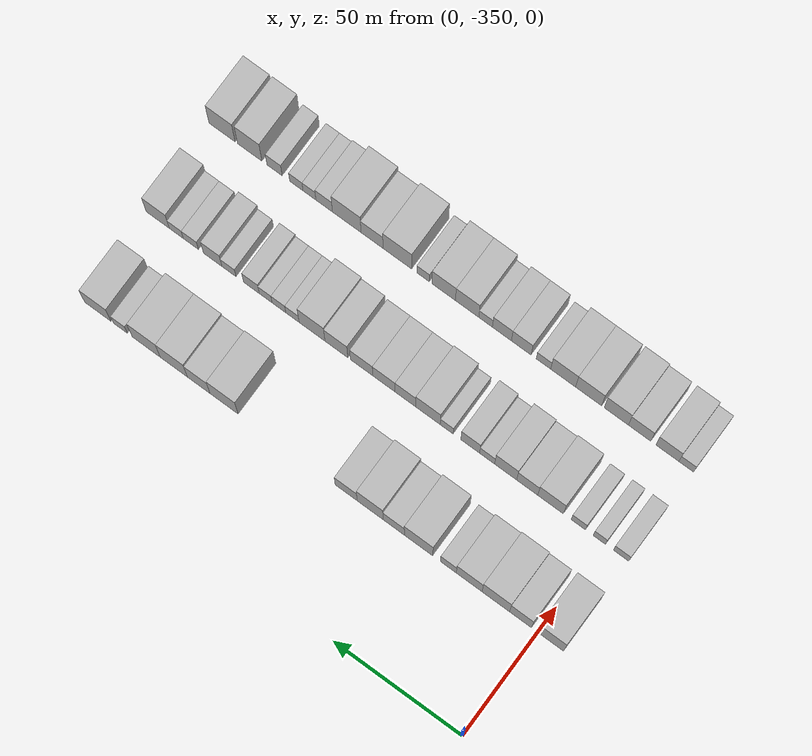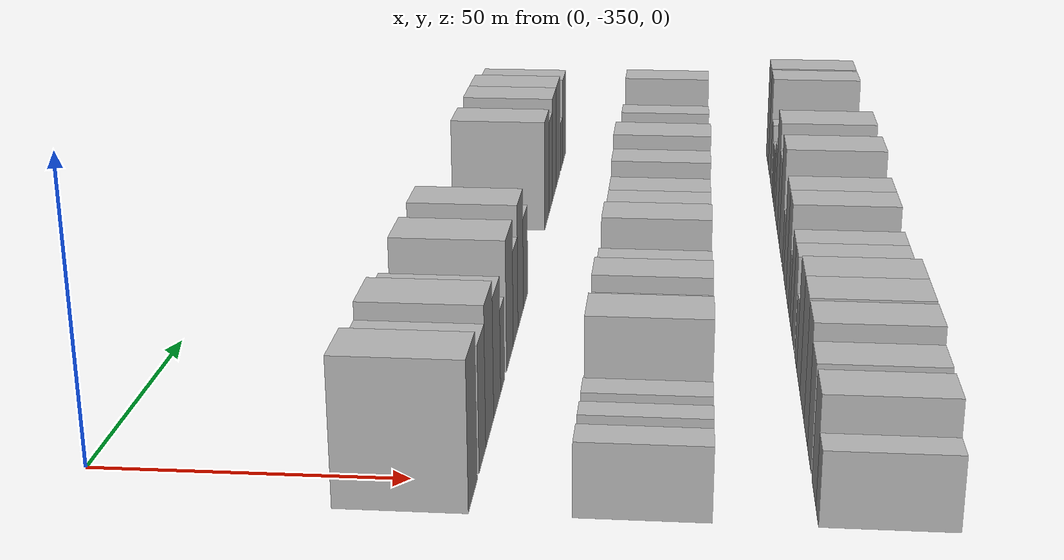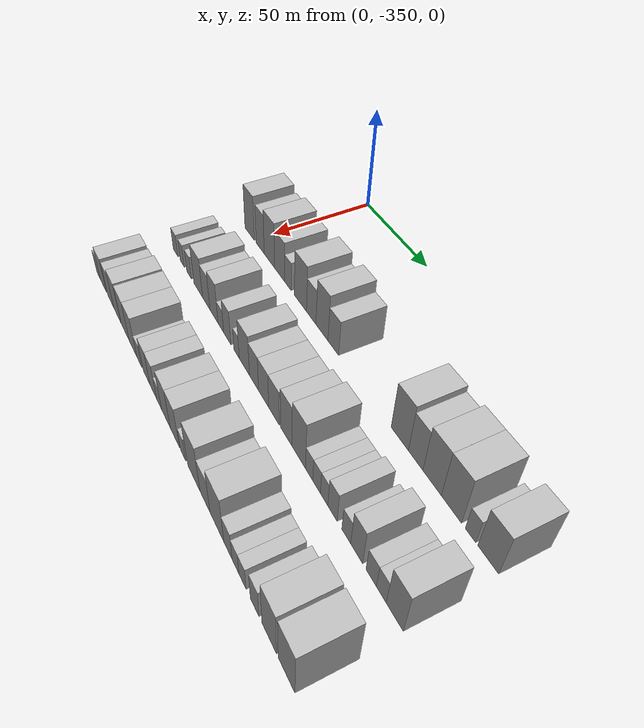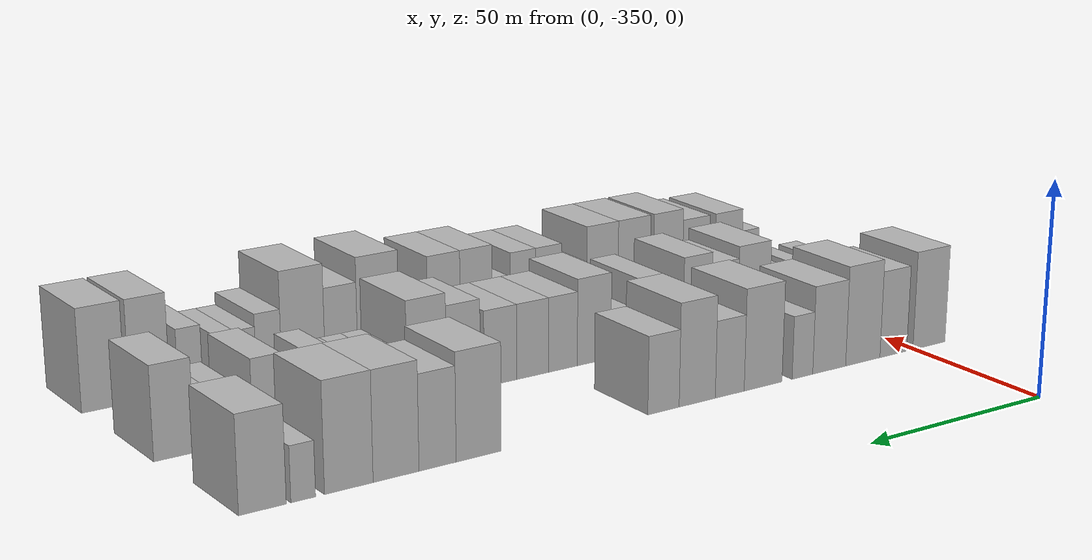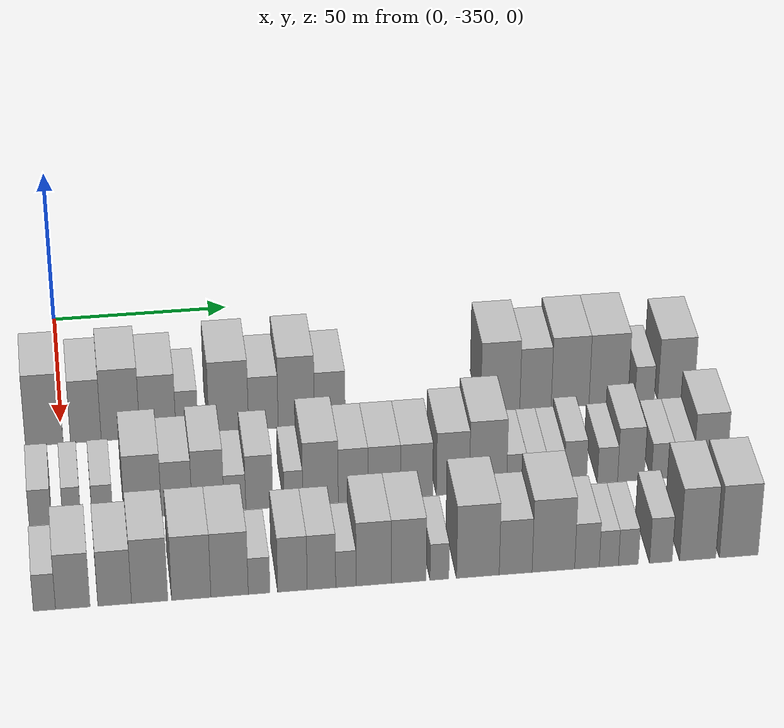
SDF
<sdf version="1.6">
 <world name="default">
  <model name="building_1">
   <static>1</static>
   <pose>50.0000 -354.8078 0 0.000000 0.000000 0.000000</pose>
   <link name="link">
    <pose>0 0 12.00 0 0 0</pose>
    <collision name="collision"><geometry><box><size>20.0000 10.3845 24.0000</size></box></geometry></collision>
    <visual name="visual">
     <cast_shadows>0</cast_shadows>
     <geometry><box><size>20.0000 10.3845 24.0000</size></box></geometry>
     <material>
      <script>
       <uri>model://HANNAS_wall/materials/scripts</uri>
       <uri>model://HANNAS_wall/materials/textures</uri>
       <name>vrc/HANNAS_wall</name>
      </script>
     </material>
    </visual>
   </link>
  </model>
  <model name="building_2">
   <static>1</static>
   <pose>50.0000 -343.3684 0 0.000000 0.000000 0.000000</pose>
   <link name="link">
    <pose>0 0 10.50 0 0 0</pose>
    <collision name="collision"><geometry><box><size>20.0000 8.4943 21.0000</size></box></geometry></collision>
    <visual name="visual">
     <cast_shadows>0</cast_shadows>
     <geometry><box><size>20.0000 8.4943 21.0000</size></box></geometry>
     <material>
      <script>
       <uri>model://HANNAS_wall/materials/scripts</uri>
       <uri>model://HANNAS_wall/materials/textures</uri>
       <name>vrc/HANNAS_wall</name>
      </script>
     </material>
    </visual>
   </link>
  </model>
  <model name="building_3">
   <static>1</static>
   <pose>50.0000 -333.7885 0 0.000000 0.000000 0.000000</pose>
   <link name="link">
    <pose>0 0 12.00 0 0 0</pose>
    <collision name="collision"><geometry><box><size>20.0000 10.6656 24.0000</size></box></geometry></collision>
    <visual name="visual">
     <cast_shadows>0</cast_shadows>
     <geometry><box><size>20.0000 10.6656 24.0000</size></box></geometry>
     <material>
      <script>
       <uri>model://HANNAS_wall/materials/scripts</uri>
       <uri>model://HANNAS_wall/materials/textures</uri>
       <name>vrc/HANNAS_wall</name>
      </script>
     </material>
    </visual>
   </link>
  </model>
  <model name="building_4">
   <static>1</static>
   <pose>50.0000 -323.4467 0 0.000000 0.000000 0.000000</pose>
   <link name="link">
    <pose>0 0 10.50 0 0 0</pose>
    <collision name="collision"><geometry><box><size>20.0000 10.0181 21.0000</size></box></geometry></collision>
    <visual name="visual">
     <cast_shadows>0</cast_shadows>
     <geometry><box><size>20.0000 10.0181 21.0000</size></box></geometry>
     <material>
      <script>
       <uri>model://HANNAS_wall/materials/scripts</uri>
       <uri>model://HANNAS_wall/materials/textures</uri>
       <name>vrc/HANNAS_wall</name>
      </script>
     </material>
    </visual>
   </link>
  </model>
  <model name="building_5">
   <static>1</static>
   <pose>50.0000 -315.3595 0 0.000000 0.000000 0.000000</pose>
   <link name="link">
    <pose>0 0 7.50 0 0 0</pose>
    <collision name="collision"><geometry><box><size>20.0000 6.1562 15.0000</size></box></geometry></collision>
    <visual name="visual">
     <cast_shadows>0</cast_shadows>
     <geometry><box><size>20.0000 6.1562 15.0000</size></box></geometry>
     <material>
      <script>
       <uri>model://HANNAS_wall/materials/scripts</uri>
       <uri>model://HANNAS_wall/materials/textures</uri>
       <name>vrc/HANNAS_wall</name>
      </script>
     </material>
    </visual>
   </link>
  </model>
  <model name="building_6">
   <static>1</static>
   <pose>50.0000 -303.7663 0 0.000000 0.000000 0.000000</pose>
   <link name="link">
    <pose>0 0 12.00 0 0 0</pose>
    <collision name="collision"><geometry><box><size>20.0000 11.0303 24.0000</size></box></geometry></collision>
    <visual name="visual">
     <cast_shadows>0</cast_shadows>
     <geometry><box><size>20.0000 11.0303 24.0000</size></box></geometry>
     <material>
      <script>
       <uri>model://HANNAS_wall/materials/scripts</uri>
       <uri>model://HANNAS_wall/materials/textures</uri>
       <name>vrc/HANNAS_wall</name>
      </script>
     </material>
    </visual>
   </link>
  </model>
  <model name="building_7">
   <static>1</static>
   <pose>50.0000 -294.1238 0 0.000000 0.000000 0.000000</pose>
   <link name="link">
    <pose>0 0 9.00 0 0 0</pose>
    <collision name="collision"><geometry><box><size>20.0000 8.2547 18.0000</size></box></geometry></collision>
    <visual name="visual">
     <cast_shadows>0</cast_shadows>
     <geometry><box><size>20.0000 8.2547 18.0000</size></box></geometry>
     <material>
      <script>
       <uri>model://HANNAS_wall/materials/scripts</uri>
       <uri>model://HANNAS_wall/materials/textures</uri>
       <name>vrc/HANNAS_wall</name>
      </script>
     </material>
    </visual>
   </link>
  </model>
  <model name="building_8">
   <static>1</static>
   <pose>50.0000 -284.9374 0 0.000000 0.000000 0.000000</pose>
   <link name="link">
    <pose>0 0 12.00 0 0 0</pose>
    <collision name="collision"><geometry><box><size>20.0000 10.1181 24.0000</size></box></geometry></collision>
    <visual name="visual">
     <cast_shadows>0</cast_shadows>
     <geometry><box><size>20.0000 10.1181 24.0000</size></box></geometry>
     <material>
      <script>
       <uri>model://HANNAS_wall/materials/scripts</uri>
       <uri>model://HANNAS_wall/materials/textures</uri>
       <name>vrc/HANNAS_wall</name>
      </script>
     </material>
    </visual>
   </link>
  </model>
  <model name="building_9">
   <static>1</static>
   <pose>50.0000 -275.5787 0 0.000000 0.000000 0.000000</pose>
   <link name="link">
    <pose>0 0 9.00 0 0 0</pose>
    <collision name="collision"><geometry><box><size>20.0000 8.5992 18.0000</size></box></geometry></collision>
    <visual name="visual">
     <cast_shadows>0</cast_shadows>
     <geometry><box><size>20.0000 8.5992 18.0000</size></box></geometry>
     <material>
      <script>
       <uri>model://HANNAS_wall/materials/scripts</uri>
       <uri>model://HANNAS_wall/materials/textures</uri>
       <name>vrc/HANNAS_wall</name>
      </script>
     </material>
    </visual>
   </link>
  </model>
  <model name="building_10">
   <static>1</static>
   <pose>50.0000 -227.6581 0 0.000000 0.000000 0.000000</pose>
   <link name="link">
    <pose>0 0 12.00 0 0 0</pose>
    <collision name="collision"><geometry><box><size>20.0000 11.0807 24.0000</size></box></geometry></collision>
    <visual name="visual">
     <cast_shadows>0</cast_shadows>
     <geometry><box><size>20.0000 11.0807 24.0000</size></box></geometry>
     <material>
      <script>
       <uri>model://HANNAS_wall/materials/scripts</uri>
       <uri>model://HANNAS_wall/materials/textures</uri>
       <name>vrc/HANNAS_wall</name>
      </script>
     </material>
    </visual>
   </link>
  </model>
  <model name="building_11">
   <static>1</static>
   <pose>50.0000 -217.6693 0 0.000000 0.000000 0.000000</pose>
   <link name="link">
    <pose>0 0 10.50 0 0 0</pose>
    <collision name="collision"><geometry><box><size>20.0000 8.8970 21.0000</size></box></geometry></collision>
    <visual name="visual">
     <cast_shadows>0</cast_shadows>
     <geometry><box><size>20.0000 8.8970 21.0000</size></box></geometry>
     <material>
      <script>
       <uri>model://HANNAS_wall/materials/scripts</uri>
       <uri>model://HANNAS_wall/materials/textures</uri>
       <name>vrc/HANNAS_wall</name>
      </script>
     </material>
    </visual>
   </link>
  </model>
  <model name="building_12">
   <static>1</static>
   <pose>50.0000 -207.8444 0 0.000000 0.000000 0.000000</pose>
   <link name="link">
    <pose>0 0 12.00 0 0 0</pose>
    <collision name="collision"><geometry><box><size>20.0000 10.7528 24.0000</size></box></geometry></collision>
    <visual name="visual">
     <cast_shadows>0</cast_shadows>
     <geometry><box><size>20.0000 10.7528 24.0000</size></box></geometry>
     <material>
      <script>
       <uri>model://HANNAS_wall/materials/scripts</uri>
       <uri>model://HANNAS_wall/materials/textures</uri>
       <name>vrc/HANNAS_wall</name>
      </script>
     </material>
    </visual>
   </link>
  </model>
  <model name="building_13">
   <static>1</static>
   <pose>50.0000 -196.9216 0 0.000000 0.000000 0.000000</pose>
   <link name="link">
    <pose>0 0 12.00 0 0 0</pose>
    <collision name="collision"><geometry><box><size>20.0000 11.0927 24.0000</size></box></geometry></collision>
    <visual name="visual">
     <cast_shadows>0</cast_shadows>
     <geometry><box><size>20.0000 11.0927 24.0000</size></box></geometry>
     <material>
      <script>
       <uri>model://HANNAS_wall/materials/scripts</uri>
       <uri>model://HANNAS_wall/materials/textures</uri>
       <name>vrc/HANNAS_wall</name>
      </script>
     </material>
    </visual>
   </link>
  </model>
  <model name="building_14">
   <static>1</static>
   <pose>50.0000 -186.6252 0 0.000000 0.000000 0.000000</pose>
   <link name="link">
    <pose>0 0 6.00 0 0 0</pose>
    <collision name="collision"><geometry><box><size>20.0000 5.5001 12.0000</size></box></geometry></collision>
    <visual name="visual">
     <cast_shadows>0</cast_shadows>
     <geometry><box><size>20.0000 5.5001 12.0000</size></box></geometry>
     <material>
      <script>
       <uri>model://HANNAS_wall/materials/scripts</uri>
       <uri>model://HANNAS_wall/materials/textures</uri>
       <name>vrc/HANNAS_wall</name>
      </script>
     </material>
    </visual>
   </link>
  </model>
  <model name="building_15">
   <static>1</static>
   <pose>50.0000 -177.6738 0 0.000000 0.000000 0.000000</pose>
   <link name="link">
    <pose>0 0 10.50 0 0 0</pose>
    <collision name="collision"><geometry><box><size>20.0000 10.4028 21.0000</size></box></geometry></collision>
    <visual name="visual">
     <cast_shadows>0</cast_shadows>
     <geometry><box><size>20.0000 10.4028 21.0000</size></box></geometry>
     <material>
      <script>
       <uri>model://HANNAS_wall/materials/scripts</uri>
       <uri>model://HANNAS_wall/materials/textures</uri>
       <name>vrc/HANNAS_wall</name>
      </script>
     </material>
    </visual>
   </link>
  </model>
  <model name="building_80">
   <static>1</static>
   <pose>85.0000 -357.0064 0 0.000000 0.000000 0.000000</pose>
   <link name="link">
    <pose>0 0 6.00 0 0 0</pose>
    <collision name="collision"><geometry><box><size>20.0000 5.9872 12.0000</size></box></geometry></collision>
    <visual name="visual">
     <cast_shadows>0</cast_shadows>
     <geometry><box><size>20.0000 5.9872 12.0000</size></box></geometry>
     <material>
      <script>
       <uri>model://HANNAS_wall/materials/scripts</uri>
       <uri>model://HANNAS_wall/materials/textures</uri>
       <name>vrc/HANNAS_wall</name>
      </script>
     </material>
    </visual>
   </link>
  </model>
  <model name="building_81">
   <static>1</static>
   <pose>85.0000 -348.6082 0 0.000000 0.000000 0.000000</pose>
   <link name="link">
    <pose>0 0 6.00 0 0 0</pose>
    <collision name="collision"><geometry><box><size>20.0000 4.8091 12.0000</size></box></geometry></collision>
    <visual name="visual">
     <cast_shadows>0</cast_shadows>
     <geometry><box><size>20.0000 4.8091 12.0000</size></box></geometry>
     <material>
      <script>
       <uri>model://HANNAS_wall/materials/scripts</uri>
       <uri>model://HANNAS_wall/materials/textures</uri>
       <name>vrc/HANNAS_wall</name>
      </script>
     </material>
    </visual>
   </link>
  </model>
  <model name="building_82">
   <static>1</static>
   <pose>85.0000 -340.4228 0 0.000000 0.000000 0.000000</pose>
   <link name="link">
    <pose>0 0 6.00 0 0 0</pose>
    <collision name="collision"><geometry><box><size>20.0000 5.5617 12.0000</size></box></geometry></collision>
    <visual name="visual">
     <cast_shadows>0</cast_shadows>
     <geometry><box><size>20.0000 5.5617 12.0000</size></box></geometry>
     <material>
      <script>
       <uri>model://HANNAS_wall/materials/scripts</uri>
       <uri>model://HANNAS_wall/materials/textures</uri>
       <name>vrc/HANNAS_wall</name>
      </script>
     </material>
    </visual>
   </link>
  </model>
  <model name="building_83">
   <static>1</static>
   <pose>85.0000 -329.6645 0 0.000000 0.000000 0.000000</pose>
   <link name="link">
    <pose>0 0 10.50 0 0 0</pose>
    <collision name="collision"><geometry><box><size>20.0000 9.9548 21.0000</size></box></geometry></collision>
    <visual name="visual">
     <cast_shadows>0</cast_shadows>
     <geometry><box><size>20.0000 9.9548 21.0000</size></box></geometry>
     <material>
      <script>
       <uri>model://HANNAS_wall/materials/scripts</uri>
       <uri>model://HANNAS_wall/materials/textures</uri>
       <name>vrc/HANNAS_wall</name>
      </script>
     </material>
    </visual>
   </link>
  </model>
  <model name="building_84">
   <static>1</static>
   <pose>85.0000 -320.5922 0 0.000000 0.000000 0.000000</pose>
   <link name="link">
    <pose>0 0 9.00 0 0 0</pose>
    <collision name="collision"><geometry><box><size>20.0000 8.1900 18.0000</size></box></geometry></collision>
    <visual name="visual">
     <cast_shadows>0</cast_shadows>
     <geometry><box><size>20.0000 8.1900 18.0000</size></box></geometry>
     <material>
      <script>
       <uri>model://HANNAS_wall/materials/scripts</uri>
       <uri>model://HANNAS_wall/materials/textures</uri>
       <name>vrc/HANNAS_wall</name>
      </script>
     </material>
    </visual>
   </link>
  </model>
  <model name="building_85">
   <static>1</static>
   <pose>85.0000 -312.2022 0 0.000000 0.000000 0.000000</pose>
   <link name="link">
    <pose>0 0 10.50 0 0 0</pose>
    <collision name="collision"><geometry><box><size>20.0000 8.5900 21.0000</size></box></geometry></collision>
    <visual name="visual">
     <cast_shadows>0</cast_shadows>
     <geometry><box><size>20.0000 8.5900 21.0000</size></box></geometry>
     <material>
      <script>
       <uri>model://HANNAS_wall/materials/scripts</uri>
       <uri>model://HANNAS_wall/materials/textures</uri>
       <name>vrc/HANNAS_wall</name>
      </script>
     </material>
    </visual>
   </link>
  </model>
  <model name="building_86">
   <static>1</static>
   <pose>85.0000 -304.9733 0 0.000000 0.000000 0.000000</pose>
   <link name="link">
    <pose>0 0 6.00 0 0 0</pose>
    <collision name="collision"><geometry><box><size>20.0000 5.8677 12.0000</size></box></geometry></collision>
    <visual name="visual">
     <cast_shadows>0</cast_shadows>
     <geometry><box><size>20.0000 5.8677 12.0000</size></box></geometry>
     <material>
      <script>
       <uri>model://HANNAS_wall/materials/scripts</uri>
       <uri>model://HANNAS_wall/materials/textures</uri>
       <name>vrc/HANNAS_wall</name>
      </script>
     </material>
    </visual>
   </link>
  </model>
  <model name="building_87">
   <static>1</static>
   <pose>85.0000 -298.3743 0 0.000000 0.000000 0.000000</pose>
   <link name="link">
    <pose>0 0 9.00 0 0 0</pose>
    <collision name="collision"><geometry><box><size>20.0000 7.3304 18.0000</size></box></geometry></collision>
    <visual name="visual">
     <cast_shadows>0</cast_shadows>
     <geometry><box><size>20.0000 7.3304 18.0000</size></box></geometry>
     <material>
      <script>
       <uri>model://HANNAS_wall/materials/scripts</uri>
       <uri>model://HANNAS_wall/materials/textures</uri>
       <name>vrc/HANNAS_wall</name>
      </script>
     </material>
    </visual>
   </link>
  </model>
  <model name="building_88">
   <static>1</static>
   <pose>85.0000 -289.1805 0 0.000000 0.000000 0.000000</pose>
   <link name="link">
    <pose>0 0 6.00 0 0 0</pose>
    <collision name="collision"><geometry><box><size>20.0000 5.0574 12.0000</size></box></geometry></collision>
    <visual name="visual">
     <cast_shadows>0</cast_shadows>
     <geometry><box><size>20.0000 5.0574 12.0000</size></box></geometry>
     <material>
      <script>
       <uri>model://HANNAS_wall/materials/scripts</uri>
       <uri>model://HANNAS_wall/materials/textures</uri>
       <name>vrc/HANNAS_wall</name>
      </script>
     </material>
    </visual>
   </link>
  </model>
  <model name="building_89">
   <static>1</static>
   <pose>85.0000 -281.8579 0 0.000000 0.000000 0.000000</pose>
   <link name="link">
    <pose>0 0 10.50 0 0 0</pose>
    <collision name="collision"><geometry><box><size>20.0000 9.5879 21.0000</size></box></geometry></collision>
    <visual name="visual">
     <cast_shadows>0</cast_shadows>
     <geometry><box><size>20.0000 9.5879 21.0000</size></box></geometry>
     <material>
      <script>
       <uri>model://HANNAS_wall/materials/scripts</uri>
       <uri>model://HANNAS_wall/materials/textures</uri>
       <name>vrc/HANNAS_wall</name>
      </script>
     </material>
    </visual>
   </link>
  </model>
  <model name="building_90">
   <static>1</static>
   <pose>85.0000 -273.0261 0 0.000000 0.000000 0.000000</pose>
   <link name="link">
    <pose>0 0 9.00 0 0 0</pose>
    <collision name="collision"><geometry><box><size>20.0000 8.0757 18.0000</size></box></geometry></collision>
    <visual name="visual">
     <cast_shadows>0</cast_shadows>
     <geometry><box><size>20.0000 8.0757 18.0000</size></box></geometry>
     <material>
      <script>
       <uri>model://HANNAS_wall/materials/scripts</uri>
       <uri>model://HANNAS_wall/materials/textures</uri>
       <name>vrc/HANNAS_wall</name>
      </script>
     </material>
    </visual>
   </link>
  </model>
  <model name="building_91">
   <static>1</static>
   <pose>85.0000 -264.6019 0 0.000000 0.000000 0.000000</pose>
   <link name="link">
    <pose>0 0 9.00 0 0 0</pose>
    <collision name="collision"><geometry><box><size>20.0000 8.7726 18.0000</size></box></geometry></collision>
    <visual name="visual">
     <cast_shadows>0</cast_shadows>
     <geometry><box><size>20.0000 8.7726 18.0000</size></box></geometry>
     <material>
      <script>
       <uri>model://HANNAS_wall/materials/scripts</uri>
       <uri>model://HANNAS_wall/materials/textures</uri>
       <name>vrc/HANNAS_wall</name>
      </script>
     </material>
    </visual>
   </link>
  </model>
  <model name="building_92">
   <static>1</static>
   <pose>85.0000 -255.8188 0 0.000000 0.000000 0.000000</pose>
   <link name="link">
    <pose>0 0 9.00 0 0 0</pose>
    <collision name="collision"><geometry><box><size>20.0000 8.7935 18.0000</size></box></geometry></collision>
    <visual name="visual">
     <cast_shadows>0</cast_shadows>
     <geometry><box><size>20.0000 8.7935 18.0000</size></box></geometry>
     <material>
      <script>
       <uri>model://HANNAS_wall/materials/scripts</uri>
       <uri>model://HANNAS_wall/materials/textures</uri>
       <name>vrc/HANNAS_wall</name>
      </script>
     </material>
    </visual>
   </link>
  </model>
  <model name="building_93">
   <static>1</static>
   <pose>85.0000 -245.9310 0 0.000000 0.000000 0.000000</pose>
   <link name="link">
    <pose>0 0 10.50 0 0 0</pose>
    <collision name="collision"><geometry><box><size>20.0000 8.9822 21.0000</size></box></geometry></collision>
    <visual name="visual">
     <cast_shadows>0</cast_shadows>
     <geometry><box><size>20.0000 8.9822 21.0000</size></box></geometry>
     <material>
      <script>
       <uri>model://HANNAS_wall/materials/scripts</uri>
       <uri>model://HANNAS_wall/materials/textures</uri>
       <name>vrc/HANNAS_wall</name>
      </script>
     </material>
    </visual>
   </link>
  </model>
  <model name="building_94">
   <static>1</static>
   <pose>85.0000 -236.3534 0 0.000000 0.000000 0.000000</pose>
   <link name="link">
    <pose>0 0 12.00 0 0 0</pose>
    <collision name="collision"><geometry><box><size>20.0000 10.1730 24.0000</size></box></geometry></collision>
    <visual name="visual">
     <cast_shadows>0</cast_shadows>
     <geometry><box><size>20.0000 10.1730 24.0000</size></box></geometry>
     <material>
      <script>
       <uri>model://HANNAS_wall/materials/scripts</uri>
       <uri>model://HANNAS_wall/materials/textures</uri>
       <name>vrc/HANNAS_wall</name>
      </script>
     </material>
    </visual>
   </link>
  </model>
  <model name="building_95">
   <static>1</static>
   <pose>85.0000 -228.6197 0 0.000000 0.000000 0.000000</pose>
   <link name="link">
    <pose>0 0 6.00 0 0 0</pose>
    <collision name="collision"><geometry><box><size>20.0000 5.2944 12.0000</size></box></geometry></collision>
    <visual name="visual">
     <cast_shadows>0</cast_shadows>
     <geometry><box><size>20.0000 5.2944 12.0000</size></box></geometry>
     <material>
      <script>
       <uri>model://HANNAS_wall/materials/scripts</uri>
       <uri>model://HANNAS_wall/materials/textures</uri>
       <name>vrc/HANNAS_wall</name>
      </script>
     </material>
    </visual>
   </link>
  </model>
  <model name="building_96">
   <static>1</static>
   <pose>85.0000 -223.2780 0 0.000000 0.000000 0.000000</pose>
   <link name="link">
    <pose>0 0 6.00 0 0 0</pose>
    <collision name="collision"><geometry><box><size>20.0000 5.3888 12.0000</size></box></geometry></collision>
    <visual name="visual">
     <cast_shadows>0</cast_shadows>
     <geometry><box><size>20.0000 5.3888 12.0000</size></box></geometry>
     <material>
      <script>
       <uri>model://HANNAS_wall/materials/scripts</uri>
       <uri>model://HANNAS_wall/materials/textures</uri>
       <name>vrc/HANNAS_wall</name>
      </script>
     </material>
    </visual>
   </link>
  </model>
  <model name="building_97">
   <static>1</static>
   <pose>85.0000 -218.0457 0 0.000000 0.000000 0.000000</pose>
   <link name="link">
    <pose>0 0 6.00 0 0 0</pose>
    <collision name="collision"><geometry><box><size>20.0000 5.0758 12.0000</size></box></geometry></collision>
    <visual name="visual">
     <cast_shadows>0</cast_shadows>
     <geometry><box><size>20.0000 5.0758 12.0000</size></box></geometry>
     <material>
      <script>
       <uri>model://HANNAS_wall/materials/scripts</uri>
       <uri>model://HANNAS_wall/materials/textures</uri>
       <name>vrc/HANNAS_wall</name>
      </script>
     </material>
    </visual>
   </link>
  </model>
  <model name="building_98">
   <static>1</static>
   <pose>85.0000 -212.4050 0 0.000000 0.000000 0.000000</pose>
   <link name="link">
    <pose>0 0 7.50 0 0 0</pose>
    <collision name="collision"><geometry><box><size>20.0000 6.2056 15.0000</size></box></geometry></collision>
    <visual name="visual">
     <cast_shadows>0</cast_shadows>
     <geometry><box><size>20.0000 6.2056 15.0000</size></box></geometry>
     <material>
      <script>
       <uri>model://HANNAS_wall/materials/scripts</uri>
       <uri>model://HANNAS_wall/materials/textures</uri>
       <name>vrc/HANNAS_wall</name>
      </script>
     </material>
    </visual>
   </link>
  </model>
  <model name="building_99">
   <static>1</static>
   <pose>85.0000 -203.5174 0 0.000000 0.000000 0.000000</pose>
   <link name="link">
    <pose>0 0 6.00 0 0 0</pose>
    <collision name="collision"><geometry><box><size>20.0000 5.5697 12.0000</size></box></geometry></collision>
    <visual name="visual">
     <cast_shadows>0</cast_shadows>
     <geometry><box><size>20.0000 5.5697 12.0000</size></box></geometry>
     <material>
      <script>
       <uri>model://HANNAS_wall/materials/scripts</uri>
       <uri>model://HANNAS_wall/materials/textures</uri>
       <name>vrc/HANNAS_wall</name>
      </script>
     </material>
    </visual>
   </link>
  </model>
  <model name="building_100">
   <static>1</static>
   <pose>85.0000 -197.0673 0 0.000000 0.000000 0.000000</pose>
   <link name="link">
    <pose>0 0 9.00 0 0 0</pose>
    <collision name="collision"><geometry><box><size>20.0000 7.3305 18.0000</size></box></geometry></collision>
    <visual name="visual">
     <cast_shadows>0</cast_shadows>
     <geometry><box><size>20.0000 7.3305 18.0000</size></box></geometry>
     <material>
      <script>
       <uri>model://HANNAS_wall/materials/scripts</uri>
       <uri>model://HANNAS_wall/materials/textures</uri>
       <name>vrc/HANNAS_wall</name>
      </script>
     </material>
    </visual>
   </link>
  </model>
  <model name="building_101">
   <static>1</static>
   <pose>85.0000 -188.4065 0 0.000000 0.000000 0.000000</pose>
   <link name="link">
    <pose>0 0 6.00 0 0 0</pose>
    <collision name="collision"><geometry><box><size>20.0000 5.9910 12.0000</size></box></geometry></collision>
    <visual name="visual">
     <cast_shadows>0</cast_shadows>
     <geometry><box><size>20.0000 5.9910 12.0000</size></box></geometry>
     <material>
      <script>
       <uri>model://HANNAS_wall/materials/scripts</uri>
       <uri>model://HANNAS_wall/materials/textures</uri>
       <name>vrc/HANNAS_wall</name>
      </script>
     </material>
    </visual>
   </link>
  </model>
  <model name="building_102">
   <static>1</static>
   <pose>85.0000 -182.6253 0 0.000000 0.000000 0.000000</pose>
   <link name="link">
    <pose>0 0 6.00 0 0 0</pose>
    <collision name="collision"><geometry><box><size>20.0000 5.5713 12.0000</size></box></geometry></collision>
    <visual name="visual">
     <cast_shadows>0</cast_shadows>
     <geometry><box><size>20.0000 5.5713 12.0000</size></box></geometry>
     <material>
      <script>
       <uri>model://HANNAS_wall/materials/scripts</uri>
       <uri>model://HANNAS_wall/materials/textures</uri>
       <name>vrc/HANNAS_wall</name>
      </script>
     </material>
    </visual>
   </link>
  </model>
  <model name="building_103">
   <static>1</static>
   <pose>85.0000 -175.2374 0 0.000000 0.000000 0.000000</pose>
   <link name="link">
    <pose>0 0 10.50 0 0 0</pose>
    <collision name="collision"><geometry><box><size>20.0000 9.2045 21.0000</size></box></geometry></collision>
    <visual name="visual">
     <cast_shadows>0</cast_shadows>
     <geometry><box><size>20.0000 9.2045 21.0000</size></box></geometry>
     <material>
      <script>
       <uri>model://HANNAS_wall/materials/scripts</uri>
       <uri>model://HANNAS_wall/materials/textures</uri>
       <name>vrc/HANNAS_wall</name>
      </script>
     </material>
    </visual>
   </link>
  </model>
  <model name="building_164">
   <static>1</static>
   <pose>120.0000 -357.1477 0 0.000000 0.000000 0.000000</pose>
   <link name="link">
    <pose>0 0 6.00 0 0 0</pose>
    <collision name="collision"><geometry><box><size>20.0000 5.7047 12.0000</size></box></geometry></collision>
    <visual name="visual">
     <cast_shadows>0</cast_shadows>
     <geometry><box><size>20.0000 5.7047 12.0000</size></box></geometry>
     <material>
      <script>
       <uri>model://HANNAS_wall/materials/scripts</uri>
       <uri>model://HANNAS_wall/materials/textures</uri>
       <name>vrc/HANNAS_wall</name>
      </script>
     </material>
    </visual>
   </link>
  </model>
  <model name="building_165">
   <static>1</static>
   <pose>120.0000 -349.8410 0 0.000000 0.000000 0.000000</pose>
   <link name="link">
    <pose>0 0 9.00 0 0 0</pose>
    <collision name="collision"><geometry><box><size>20.0000 8.9086 18.0000</size></box></geometry></collision>
    <visual name="visual">
     <cast_shadows>0</cast_shadows>
     <geometry><box><size>20.0000 8.9086 18.0000</size></box></geometry>
     <material>
      <script>
       <uri>model://HANNAS_wall/materials/scripts</uri>
       <uri>model://HANNAS_wall/materials/textures</uri>
       <name>vrc/HANNAS_wall</name>
      </script>
     </material>
    </visual>
   </link>
  </model>
  <model name="building_166">
   <static>1</static>
   <pose>120.0000 -339.0402 0 0.000000 0.000000 0.000000</pose>
   <link name="link">
    <pose>0 0 9.00 0 0 0</pose>
    <collision name="collision"><geometry><box><size>20.0000 8.6930 18.0000</size></box></geometry></collision>
    <visual name="visual">
     <cast_shadows>0</cast_shadows>
     <geometry><box><size>20.0000 8.6930 18.0000</size></box></geometry>
     <material>
      <script>
       <uri>model://HANNAS_wall/materials/scripts</uri>
       <uri>model://HANNAS_wall/materials/textures</uri>
       <name>vrc/HANNAS_wall</name>
      </script>
     </material>
    </visual>
   </link>
  </model>
  <model name="building_167">
   <static>1</static>
   <pose>120.0000 -329.9915 0 0.000000 0.000000 0.000000</pose>
   <link name="link">
    <pose>0 0 10.50 0 0 0</pose>
    <collision name="collision"><geometry><box><size>20.0000 9.4043 21.0000</size></box></geometry></collision>
    <visual name="visual">
     <cast_shadows>0</cast_shadows>
     <geometry><box><size>20.0000 9.4043 21.0000</size></box></geometry>
     <material>
      <script>
       <uri>model://HANNAS_wall/materials/scripts</uri>
       <uri>model://HANNAS_wall/materials/textures</uri>
       <name>vrc/HANNAS_wall</name>
      </script>
     </material>
    </visual>
   </link>
  </model>
  <model name="building_168">
   <static>1</static>
   <pose>120.0000 -319.2031 0 0.000000 0.000000 0.000000</pose>
   <link name="link">
    <pose>0 0 10.50 0 0 0</pose>
    <collision name="collision"><geometry><box><size>20.0000 10.1724 21.0000</size></box></geometry></collision>
    <visual name="visual">
     <cast_shadows>0</cast_shadows>
     <geometry><box><size>20.0000 10.1724 21.0000</size></box></geometry>
     <material>
      <script>
       <uri>model://HANNAS_wall/materials/scripts</uri>
       <uri>model://HANNAS_wall/materials/textures</uri>
       <name>vrc/HANNAS_wall</name>
      </script>
     </material>
    </visual>
   </link>
  </model>
  <model name="building_169">
   <static>1</static>
   <pose>120.0000 -309.2573 0 0.000000 0.000000 0.000000</pose>
   <link name="link">
    <pose>0 0 10.50 0 0 0</pose>
    <collision name="collision"><geometry><box><size>20.0000 9.7192 21.0000</size></box></geometry></collision>
    <visual name="visual">
     <cast_shadows>0</cast_shadows>
     <geometry><box><size>20.0000 9.7192 21.0000</size></box></geometry>
     <material>
      <script>
       <uri>model://HANNAS_wall/materials/scripts</uri>
       <uri>model://HANNAS_wall/materials/textures</uri>
       <name>vrc/HANNAS_wall</name>
      </script>
     </material>
    </visual>
   </link>
  </model>
  <model name="building_170">
   <static>1</static>
   <pose>120.0000 -301.5673 0 0.000000 0.000000 0.000000</pose>
   <link name="link">
    <pose>0 0 6.00 0 0 0</pose>
    <collision name="collision"><geometry><box><size>20.0000 5.6608 12.0000</size></box></geometry></collision>
    <visual name="visual">
     <cast_shadows>0</cast_shadows>
     <geometry><box><size>20.0000 5.6608 12.0000</size></box></geometry>
     <material>
      <script>
       <uri>model://HANNAS_wall/materials/scripts</uri>
       <uri>model://HANNAS_wall/materials/textures</uri>
       <name>vrc/HANNAS_wall</name>
      </script>
     </material>
    </visual>
   </link>
  </model>
  <model name="building_171">
   <static>1</static>
   <pose>120.0000 -292.8769 0 0.000000 0.000000 0.000000</pose>
   <link name="link">
    <pose>0 0 9.00 0 0 0</pose>
    <collision name="collision"><geometry><box><size>20.0000 7.7201 18.0000</size></box></geometry></collision>
    <visual name="visual">
     <cast_shadows>0</cast_shadows>
     <geometry><box><size>20.0000 7.7201 18.0000</size></box></geometry>
     <material>
      <script>
       <uri>model://HANNAS_wall/materials/scripts</uri>
       <uri>model://HANNAS_wall/materials/textures</uri>
       <name>vrc/HANNAS_wall</name>
      </script>
     </material>
    </visual>
   </link>
  </model>
  <model name="building_172">
   <static>1</static>
   <pose>120.0000 -285.2940 0 0.000000 0.000000 0.000000</pose>
   <link name="link">
    <pose>0 0 9.00 0 0 0</pose>
    <collision name="collision"><geometry><box><size>20.0000 7.4455 18.0000</size></box></geometry></collision>
    <visual name="visual">
     <cast_shadows>0</cast_shadows>
     <geometry><box><size>20.0000 7.4455 18.0000</size></box></geometry>
     <material>
      <script>
       <uri>model://HANNAS_wall/materials/scripts</uri>
       <uri>model://HANNAS_wall/materials/textures</uri>
       <name>vrc/HANNAS_wall</name>
      </script>
     </material>
    </visual>
   </link>
  </model>
  <model name="building_173">
   <static>1</static>
   <pose>120.0000 -278.9081 0 0.000000 0.000000 0.000000</pose>
   <link name="link">
    <pose>0 0 6.00 0 0 0</pose>
    <collision name="collision"><geometry><box><size>20.0000 5.3262 12.0000</size></box></geometry></collision>
    <visual name="visual">
     <cast_shadows>0</cast_shadows>
     <geometry><box><size>20.0000 5.3262 12.0000</size></box></geometry>
     <material>
      <script>
       <uri>model://HANNAS_wall/materials/scripts</uri>
       <uri>model://HANNAS_wall/materials/textures</uri>
       <name>vrc/HANNAS_wall</name>
      </script>
     </material>
    </visual>
   </link>
  </model>
  <model name="building_174">
   <static>1</static>
   <pose>120.0000 -271.6490 0 0.000000 0.000000 0.000000</pose>
   <link name="link">
    <pose>0 0 10.50 0 0 0</pose>
    <collision name="collision"><geometry><box><size>20.0000 9.1920 21.0000</size></box></geometry></collision>
    <visual name="visual">
     <cast_shadows>0</cast_shadows>
     <geometry><box><size>20.0000 9.1920 21.0000</size></box></geometry>
     <material>
      <script>
       <uri>model://HANNAS_wall/materials/scripts</uri>
       <uri>model://HANNAS_wall/materials/textures</uri>
       <name>vrc/HANNAS_wall</name>
      </script>
     </material>
    </visual>
   </link>
  </model>
  <model name="building_175">
   <static>1</static>
   <pose>120.0000 -262.4375 0 0.000000 0.000000 0.000000</pose>
   <link name="link">
    <pose>0 0 10.50 0 0 0</pose>
    <collision name="collision"><geometry><box><size>20.0000 9.2312 21.0000</size></box></geometry></collision>
    <visual name="visual">
     <cast_shadows>0</cast_shadows>
     <geometry><box><size>20.0000 9.2312 21.0000</size></box></geometry>
     <material>
      <script>
       <uri>model://HANNAS_wall/materials/scripts</uri>
       <uri>model://HANNAS_wall/materials/textures</uri>
       <name>vrc/HANNAS_wall</name>
      </script>
     </material>
    </visual>
   </link>
  </model>
  <model name="building_176">
   <static>1</static>
   <pose>120.0000 -254.3365 0 0.000000 0.000000 0.000000</pose>
   <link name="link">
    <pose>0 0 6.00 0 0 0</pose>
    <collision name="collision"><geometry><box><size>20.0000 4.9707 12.0000</size></box></geometry></collision>
    <visual name="visual">
     <cast_shadows>0</cast_shadows>
     <geometry><box><size>20.0000 4.9707 12.0000</size></box></geometry>
     <material>
      <script>
       <uri>model://HANNAS_wall/materials/scripts</uri>
       <uri>model://HANNAS_wall/materials/textures</uri>
       <name>vrc/HANNAS_wall</name>
      </script>
     </material>
    </visual>
   </link>
  </model>
  <model name="building_177">
   <static>1</static>
   <pose>120.0000 -244.2073 0 0.000000 0.000000 0.000000</pose>
   <link name="link">
    <pose>0 0 12.00 0 0 0</pose>
    <collision name="collision"><geometry><box><size>20.0000 11.2878 24.0000</size></box></geometry></collision>
    <visual name="visual">
     <cast_shadows>0</cast_shadows>
     <geometry><box><size>20.0000 11.2878 24.0000</size></box></geometry>
     <material>
      <script>
       <uri>model://HANNAS_wall/materials/scripts</uri>
       <uri>model://HANNAS_wall/materials/textures</uri>
       <name>vrc/HANNAS_wall</name>
      </script>
     </material>
    </visual>
   </link>
  </model>
  <model name="building_178">
   <static>1</static>
   <pose>120.0000 -234.2110 0 0.000000 0.000000 0.000000</pose>
   <link name="link">
    <pose>0 0 9.00 0 0 0</pose>
    <collision name="collision"><geometry><box><size>20.0000 8.7048 18.0000</size></box></geometry></collision>
    <visual name="visual">
     <cast_shadows>0</cast_shadows>
     <geometry><box><size>20.0000 8.7048 18.0000</size></box></geometry>
     <material>
      <script>
       <uri>model://HANNAS_wall/materials/scripts</uri>
       <uri>model://HANNAS_wall/materials/textures</uri>
       <name>vrc/HANNAS_wall</name>
      </script>
     </material>
    </visual>
   </link>
  </model>
  <model name="building_179">
   <static>1</static>
   <pose>120.0000 -224.2067 0 0.000000 0.000000 0.000000</pose>
   <link name="link">
    <pose>0 0 12.00 0 0 0</pose>
    <collision name="collision"><geometry><box><size>20.0000 11.3038 24.0000</size></box></geometry></collision>
    <visual name="visual">
     <cast_shadows>0</cast_shadows>
     <geometry><box><size>20.0000 11.3038 24.0000</size></box></geometry>
     <material>
      <script>
       <uri>model://HANNAS_wall/materials/scripts</uri>
       <uri>model://HANNAS_wall/materials/textures</uri>
       <name>vrc/HANNAS_wall</name>
      </script>
     </material>
    </visual>
   </link>
  </model>
  <model name="building_180">
   <static>1</static>
   <pose>120.0000 -215.2852 0 0.000000 0.000000 0.000000</pose>
   <link name="link">
    <pose>0 0 7.50 0 0 0</pose>
    <collision name="collision"><geometry><box><size>20.0000 6.5391 15.0000</size></box></geometry></collision>
    <visual name="visual">
     <cast_shadows>0</cast_shadows>
     <geometry><box><size>20.0000 6.5391 15.0000</size></box></geometry>
     <material>
      <script>
       <uri>model://HANNAS_wall/materials/scripts</uri>
       <uri>model://HANNAS_wall/materials/textures</uri>
       <name>vrc/HANNAS_wall</name>
      </script>
     </material>
    </visual>
   </link>
  </model>
  <model name="building_181">
   <static>1</static>
   <pose>120.0000 -209.4498 0 0.000000 0.000000 0.000000</pose>
   <link name="link">
    <pose>0 0 6.00 0 0 0</pose>
    <collision name="collision"><geometry><box><size>20.0000 5.1317 12.0000</size></box></geometry></collision>
    <visual name="visual">
     <cast_shadows>0</cast_shadows>
     <geometry><box><size>20.0000 5.1317 12.0000</size></box></geometry>
     <material>
      <script>
       <uri>model://HANNAS_wall/materials/scripts</uri>
       <uri>model://HANNAS_wall/materials/textures</uri>
       <name>vrc/HANNAS_wall</name>
      </script>
     </material>
    </visual>
   </link>
  </model>
  <model name="building_182">
   <static>1</static>
   <pose>120.0000 -204.2443 0 0.000000 0.000000 0.000000</pose>
   <link name="link">
    <pose>0 0 6.00 0 0 0</pose>
    <collision name="collision"><geometry><box><size>20.0000 5.2793 12.0000</size></box></geometry></collision>
    <visual name="visual">
     <cast_shadows>0</cast_shadows>
     <geometry><box><size>20.0000 5.2793 12.0000</size></box></geometry>
     <material>
      <script>
       <uri>model://HANNAS_wall/materials/scripts</uri>
       <uri>model://HANNAS_wall/materials/textures</uri>
       <name>vrc/HANNAS_wall</name>
      </script>
     </material>
    </visual>
   </link>
  </model>
  <model name="building_183">
   <static>1</static>
   <pose>120.0000 -195.5850 0 0.000000 0.000000 0.000000</pose>
   <link name="link">
    <pose>0 0 7.50 0 0 0</pose>
    <collision name="collision"><geometry><box><size>20.0000 6.0394 15.0000</size></box></geometry></collision>
    <visual name="visual">
     <cast_shadows>0</cast_shadows>
     <geometry><box><size>20.0000 6.0394 15.0000</size></box></geometry>
     <material>
      <script>
       <uri>model://HANNAS_wall/materials/scripts</uri>
       <uri>model://HANNAS_wall/materials/textures</uri>
       <name>vrc/HANNAS_wall</name>
      </script>
     </material>
    </visual>
   </link>
  </model>
  <model name="building_184">
   <static>1</static>
   <pose>120.0000 -185.7267 0 0.000000 0.000000 0.000000</pose>
   <link name="link">
    <pose>0 0 12.00 0 0 0</pose>
    <collision name="collision"><geometry><box><size>20.0000 9.6772 24.0000</size></box></geometry></collision>
    <visual name="visual">
     <cast_shadows>0</cast_shadows>
     <geometry><box><size>20.0000 9.6772 24.0000</size></box></geometry>
     <material>
      <script>
       <uri>model://HANNAS_wall/materials/scripts</uri>
       <uri>model://HANNAS_wall/materials/textures</uri>
       <name>vrc/HANNAS_wall</name>
      </script>
     </material>
    </visual>
   </link>
  </model>
  <model name="building_185">
   <static>1</static>
   <pose>120.0000 -174.7098 0 0.000000 0.000000 0.000000</pose>
   <link name="link">
    <pose>0 0 12.00 0 0 0</pose>
    <collision name="collision"><geometry><box><size>20.0000 10.3568 24.0000</size></box></geometry></collision>
    <visual name="visual">
     <cast_shadows>0</cast_shadows>
     <geometry><box><size>20.0000 10.3568 24.0000</size></box></geometry>
     <material>
      <script>
       <uri>model://HANNAS_wall/materials/scripts</uri>
       <uri>model://HANNAS_wall/materials/textures</uri>
       <name>vrc/HANNAS_wall</name>
      </script>
     </material>
    </visual>
   </link>
  </model>
 </world>
</sdf>
